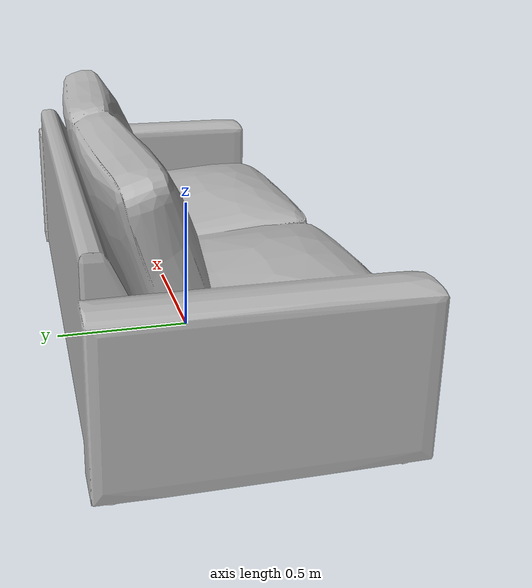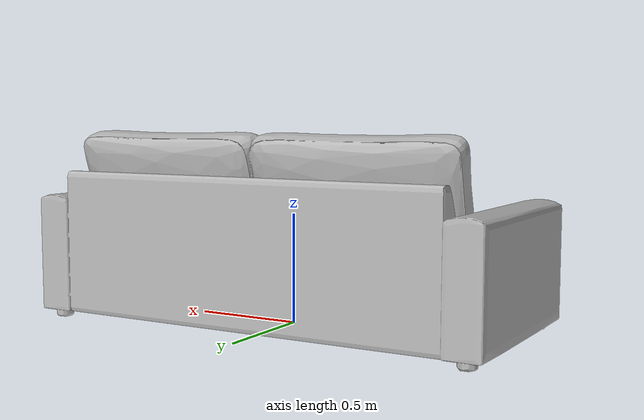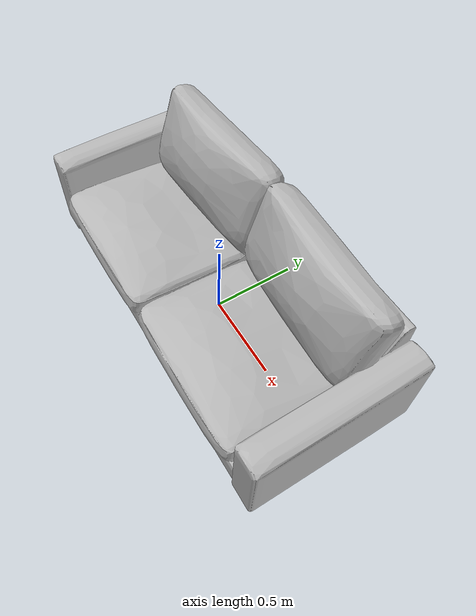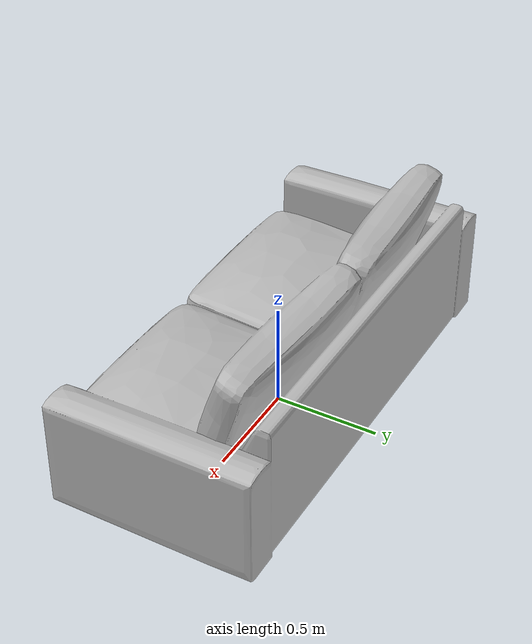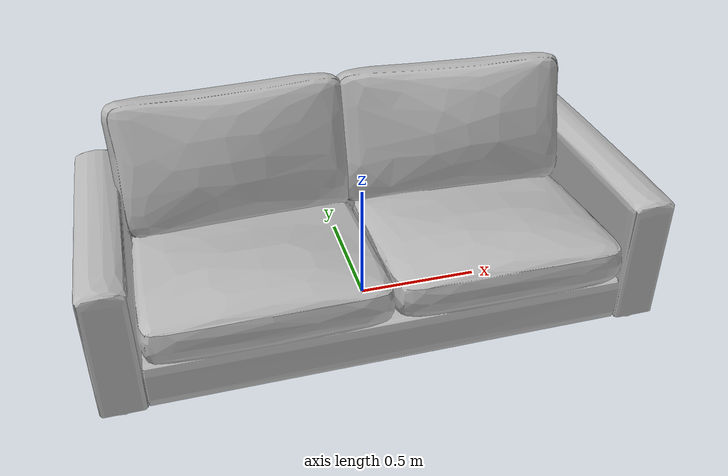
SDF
<sdf version="1.6">
	<model name="Sofas_Oae268ae3eb42_lod0">
		<link name="main_link">
			<visual name="visual_RootNode">
				<geometry>
					<mesh>
						<uri>model://Sofas_Oae268ae3eb42_lod0/meshes/visual_RootNode.dae</uri>
					</mesh>
				</geometry>
			</visual>
			<collision name="collision_RootNode_lod0_0">
				<geometry>
					<mesh>
						<uri>model://Sofas_Oae268ae3eb42_lod0/meshes/collision_RootNode_lod0_0.dae</uri>
					</mesh>
				</geometry>
			</collision>
		</link>
	</model>
</sdf>
